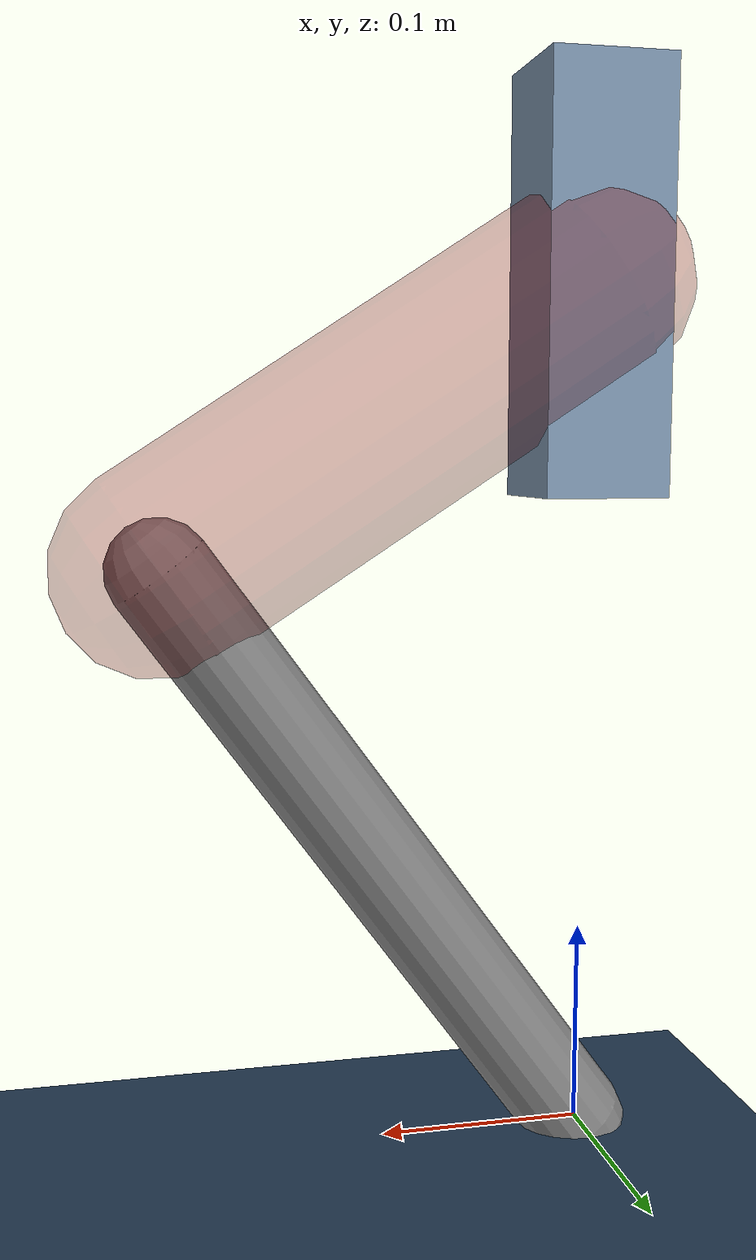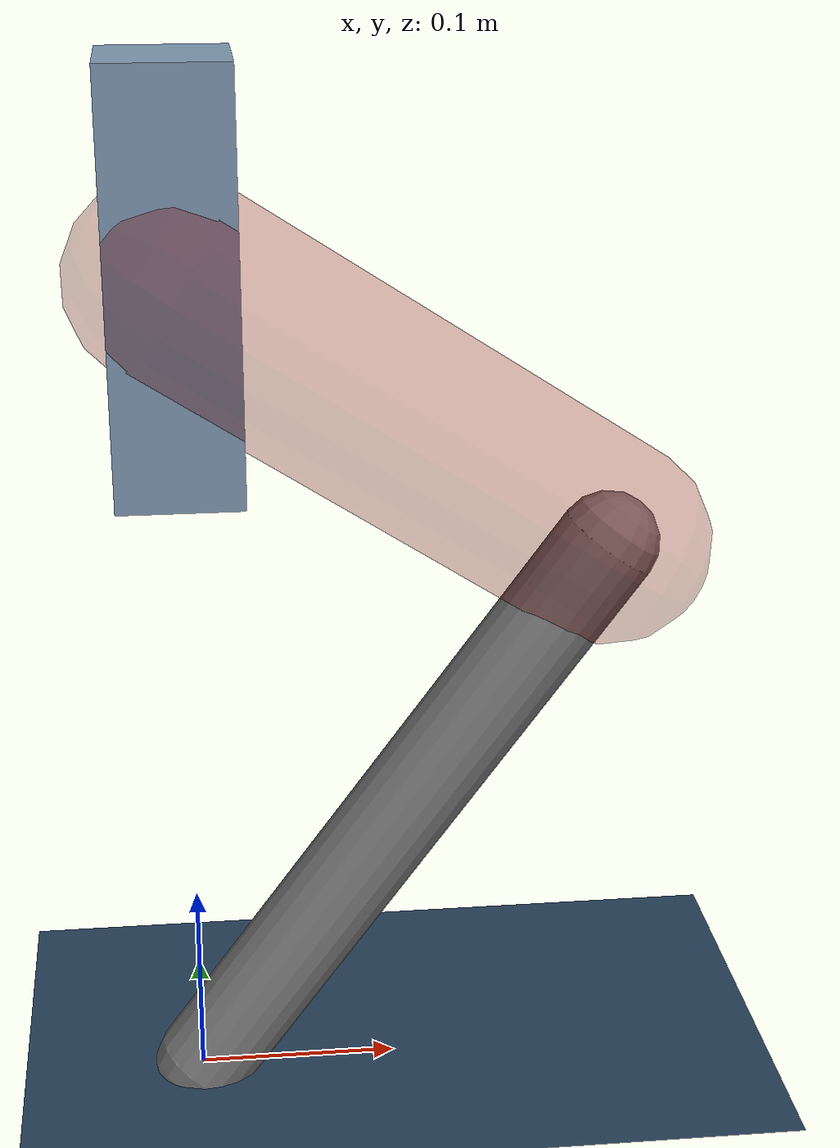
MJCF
<mujoco model="Hopper2D">
	<compiler inertiafromgeom="true" angle="radian" />
	<option timestep="0.001" integrator="implicit" cone="elliptic" solver="Newton" tolerance="1e-10" />

	<default>
		<geom contype="1" conaffinity="1" condim="3" friction="2 0.005 0.0001" solref="0.005 1" />
		<joint limited="true" damping="0.1" />
	</default>

	<asset>
		<texture name="skybox" type="skybox" builtin="gradient" rgb1=".4 .6 .8" rgb2="0 0 0" width="800" height="800" />
		<texture name="grid" type="2d" builtin="checker" rgb1=".1 .2 .3" rgb2=".2 .3 .4" width="300" height="300" mark="edge" markrgb=".2 .3 .4" />
		<material name="ground" texture="grid" texrepeat="1 1" texuniform="true" reflectance="0.1" />
		<material name="leg" rgba="0.5 0.6 0.7 1" />
	</asset>

	<worldbody>

		<geom name="floor" type="plane" size="5 5 0.25" material="ground" />

		<light directional="false" diffuse="0.8 0.8 0.8" specular="0.3 0.3 0.3" pos="0 0 2" dir="0 0 -1" />
		<light mode="targetbodycom" target="base" directional="false" diffuse="0.8 0.8 0.8" specular="0.3 0.3 0.3" pos="0 0 2" dir="0 0 -1" />

		<camera name="fixed" pos="0 -2 1" xyaxes="1 0 0 0 0 1" />
		<camera name="tracking" mode="trackcom" pos="0 -3 1" />

		<body name="root" pos="0 0 0.4149090636678573">
			<joint name="slide_x" type="slide" axis="1 0 0" range="-100 100" />
			<joint name="slide_z" type="slide" axis="0 0 1" range="0 10" />

			<body name="base" pos="0 0 0">
				<geom name="torso" type="box" size="0.03 0.03 0.1" mass="3.109" material="leg" />

				<body name="link1" pos="0 0 0" euler="0 0.5742193212245852 0">
					<joint type="hinge" axis="0 -1 0" pos="0 0 0" name="hinge1" limited="true" range="-3.14 3.14" stiffness="0" damping="0.1" />
					<geom name="thigh" type="capsule" fromto="0 0 0 0.2443356422200813 0 0" size="0.05" rgba="0.5 0 0 0.3" mass="0.8417726697722114" />

					<body name="link2" pos="0.2443356422200813 0 0" euler="0 1.625184314892992 0">
						<joint type="hinge" axis="0 -1 0" pos="0 0 0" name="hinge2" limited="true" range="-3.14 3.14" stiffness="0" damping="0.1" />
						<geom name="shank" type="capsule" fromto="0 0 0 0.3488804164611448 0 0" size="0.025" mass="0.5230043331689159" />

					</body>
				</body>
			</body>
		</body>
	</worldbody>

	<actuator>
		<motor name="torque1" joint="hinge1" ctrlrange="-126.21689254888577 126.21689254888577" ctrllimited="true" gear="1" />
		<motor name="torque2" joint="hinge2" ctrlrange="-82.8369457030038 82.8369457030038" ctrllimited="true" gear="1" />
	</actuator>
</mujoco>
